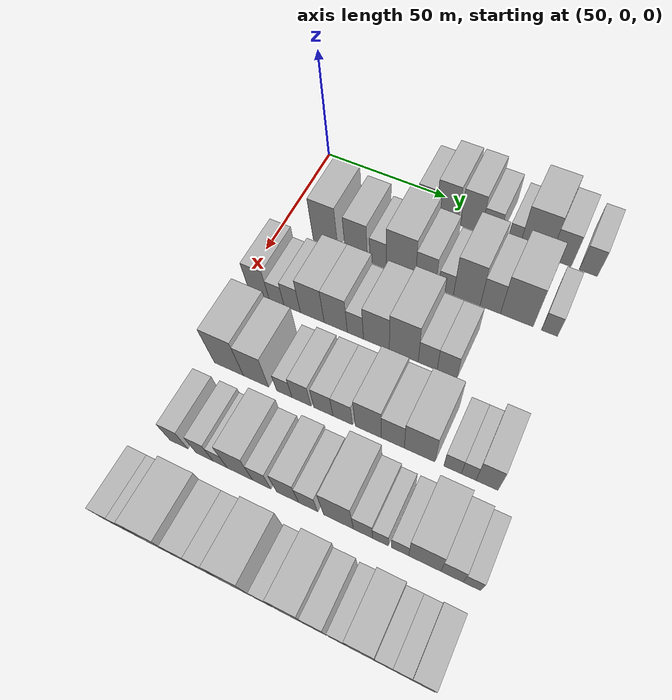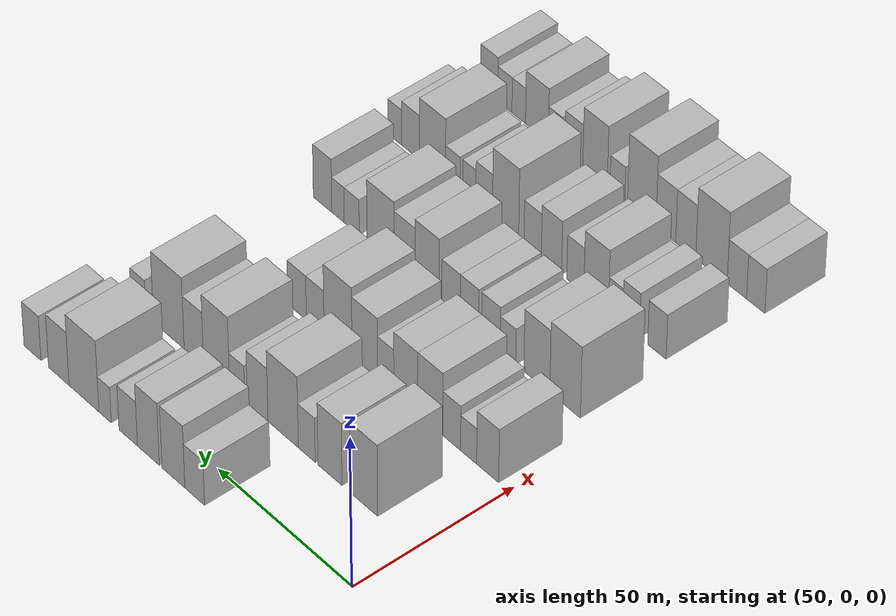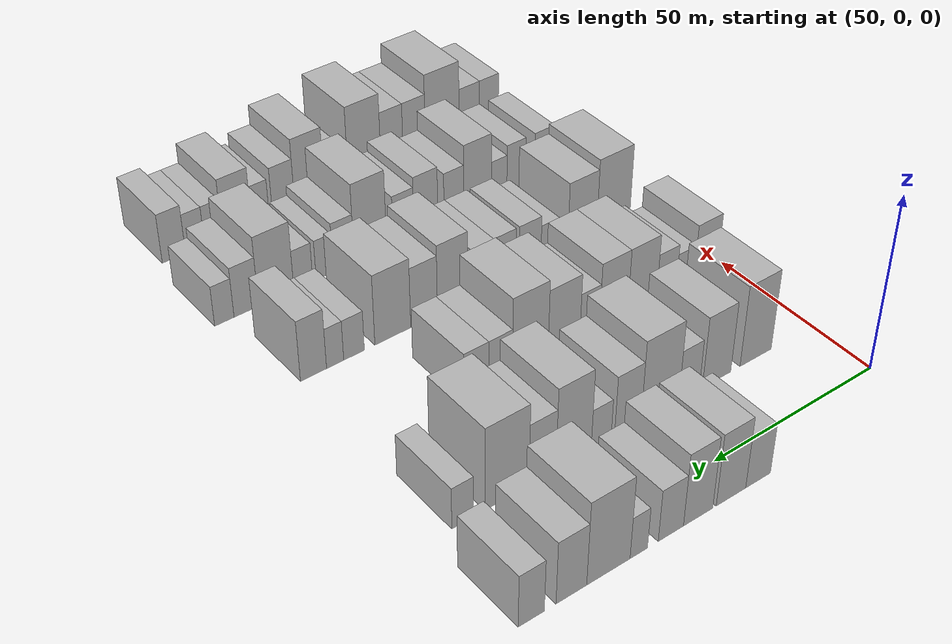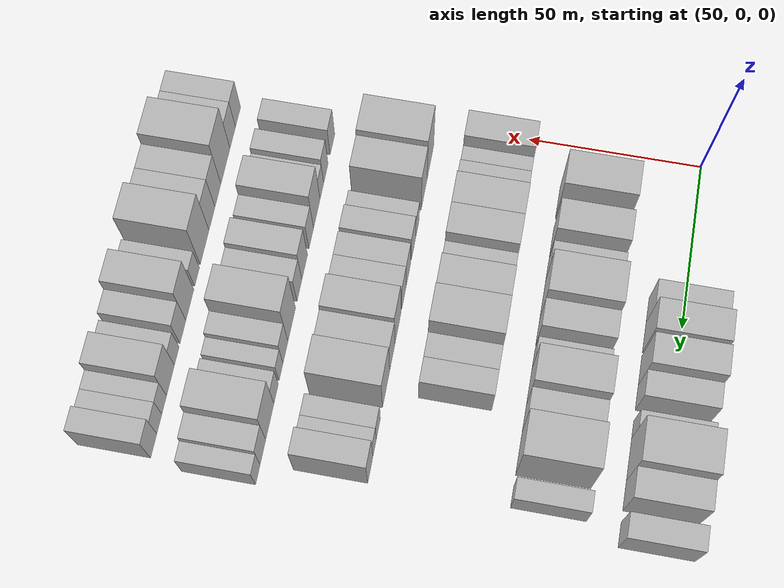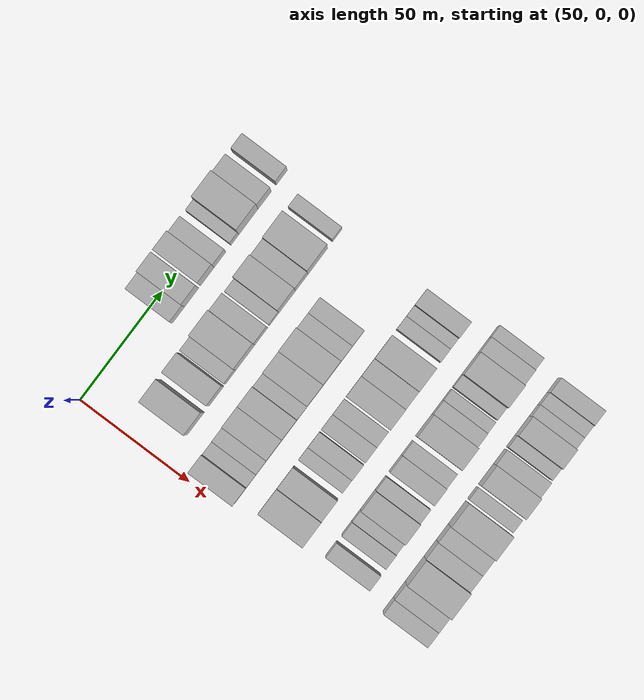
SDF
<sdf version="1.6">
 <world name="default">
  <model name="building_56">
   <static>1</static>
   <pose>50.0000 46.4894 0 0.000000 0.000000 0.000000</pose>
   <link name="link">
    <pose>0 0 7.50 0 0 0</pose>
    <collision name="collision"><geometry><box><size>20.0000 7.4628 15.0000</size></box></geometry></collision>
    <visual name="visual">
     <cast_shadows>0</cast_shadows>
     <geometry><box><size>20.0000 7.4628 15.0000</size></box></geometry>
     <material>
      <script>
       <uri>model://HANNAS_wall/materials/scripts</uri>
       <uri>model://HANNAS_wall/materials/textures</uri>
       <name>vrc/HANNAS_wall</name>
      </script>
     </material>
    </visual>
   </link>
  </model>
  <model name="building_57">
   <static>1</static>
   <pose>50.0000 54.5835 0 0.000000 0.000000 0.000000</pose>
   <link name="link">
    <pose>0 0 10.50 0 0 0</pose>
    <collision name="collision"><geometry><box><size>20.0000 8.7255 21.0000</size></box></geometry></collision>
    <visual name="visual">
     <cast_shadows>0</cast_shadows>
     <geometry><box><size>20.0000 8.7255 21.0000</size></box></geometry>
     <material>
      <script>
       <uri>model://HANNAS_wall/materials/scripts</uri>
       <uri>model://HANNAS_wall/materials/textures</uri>
       <name>vrc/HANNAS_wall</name>
      </script>
     </material>
    </visual>
   </link>
  </model>
  <model name="building_58">
   <static>1</static>
   <pose>50.0000 64.1727 0 0.000000 0.000000 0.000000</pose>
   <link name="link">
    <pose>0 0 10.50 0 0 0</pose>
    <collision name="collision"><geometry><box><size>20.0000 8.4528 21.0000</size></box></geometry></collision>
    <visual name="visual">
     <cast_shadows>0</cast_shadows>
     <geometry><box><size>20.0000 8.4528 21.0000</size></box></geometry>
     <material>
      <script>
       <uri>model://HANNAS_wall/materials/scripts</uri>
       <uri>model://HANNAS_wall/materials/textures</uri>
       <name>vrc/HANNAS_wall</name>
      </script>
     </material>
    </visual>
   </link>
  </model>
  <model name="building_59">
   <static>1</static>
   <pose>50.0000 71.9597 0 0.000000 0.000000 0.000000</pose>
   <link name="link">
    <pose>0 0 7.50 0 0 0</pose>
    <collision name="collision"><geometry><box><size>20.0000 7.1213 15.0000</size></box></geometry></collision>
    <visual name="visual">
     <cast_shadows>0</cast_shadows>
     <geometry><box><size>20.0000 7.1213 15.0000</size></box></geometry>
     <material>
      <script>
       <uri>model://HANNAS_wall/materials/scripts</uri>
       <uri>model://HANNAS_wall/materials/textures</uri>
       <name>vrc/HANNAS_wall</name>
      </script>
     </material>
    </visual>
   </link>
  </model>
  <model name="building_60">
   <static>1</static>
   <pose>50.0000 80.9286 0 0.000000 0.000000 0.000000</pose>
   <link name="link">
    <pose>0 0 6.00 0 0 0</pose>
    <collision name="collision"><geometry><box><size>20.0000 4.8165 12.0000</size></box></geometry></collision>
    <visual name="visual">
     <cast_shadows>0</cast_shadows>
     <geometry><box><size>20.0000 4.8165 12.0000</size></box></geometry>
     <material>
      <script>
       <uri>model://HANNAS_wall/materials/scripts</uri>
       <uri>model://HANNAS_wall/materials/textures</uri>
       <name>vrc/HANNAS_wall</name>
      </script>
     </material>
    </visual>
   </link>
  </model>
  <model name="building_61">
   <static>1</static>
   <pose>50.0000 89.1917 0 0.000000 0.000000 0.000000</pose>
   <link name="link">
    <pose>0 0 12.00 0 0 0</pose>
    <collision name="collision"><geometry><box><size>20.0000 11.7098 24.0000</size></box></geometry></collision>
    <visual name="visual">
     <cast_shadows>0</cast_shadows>
     <geometry><box><size>20.0000 11.7098 24.0000</size></box></geometry>
     <material>
      <script>
       <uri>model://HANNAS_wall/materials/scripts</uri>
       <uri>model://HANNAS_wall/materials/textures</uri>
       <name>vrc/HANNAS_wall</name>
      </script>
     </material>
    </visual>
   </link>
  </model>
  <model name="building_62">
   <static>1</static>
   <pose>50.0000 99.0865 0 0.000000 0.000000 0.000000</pose>
   <link name="link">
    <pose>0 0 9.00 0 0 0</pose>
    <collision name="collision"><geometry><box><size>20.0000 8.0797 18.0000</size></box></geometry></collision>
    <visual name="visual">
     <cast_shadows>0</cast_shadows>
     <geometry><box><size>20.0000 8.0797 18.0000</size></box></geometry>
     <material>
      <script>
       <uri>model://HANNAS_wall/materials/scripts</uri>
       <uri>model://HANNAS_wall/materials/textures</uri>
       <name>vrc/HANNAS_wall</name>
      </script>
     </material>
    </visual>
   </link>
  </model>
  <model name="building_63">
   <static>1</static>
   <pose>50.0000 109.4920 0 0.000000 0.000000 0.000000</pose>
   <link name="link">
    <pose>0 0 7.50 0 0 0</pose>
    <collision name="collision"><geometry><box><size>20.0000 6.7313 15.0000</size></box></geometry></collision>
    <visual name="visual">
     <cast_shadows>0</cast_shadows>
     <geometry><box><size>20.0000 6.7313 15.0000</size></box></geometry>
     <material>
      <script>
       <uri>model://HANNAS_wall/materials/scripts</uri>
       <uri>model://HANNAS_wall/materials/textures</uri>
       <name>vrc/HANNAS_wall</name>
      </script>
     </material>
    </visual>
   </link>
  </model>
  <model name="building_166">
   <static>1</static>
   <pose>79.0000 18.6473 0 0.000000 0.000000 0.000000</pose>
   <link name="link">
    <pose>0 0 12.00 0 0 0</pose>
    <collision name="collision"><geometry><box><size>20.0000 10.1705 24.0000</size></box></geometry></collision>
    <visual name="visual">
     <cast_shadows>0</cast_shadows>
     <geometry><box><size>20.0000 10.1705 24.0000</size></box></geometry>
     <material>
      <script>
       <uri>model://HANNAS_wall/materials/scripts</uri>
       <uri>model://HANNAS_wall/materials/textures</uri>
       <name>vrc/HANNAS_wall</name>
      </script>
     </material>
    </visual>
   </link>
  </model>
  <model name="building_167">
   <static>1</static>
   <pose>79.0000 31.2227 0 0.000000 0.000000 0.000000</pose>
   <link name="link">
    <pose>0 0 10.50 0 0 0</pose>
    <collision name="collision"><geometry><box><size>20.0000 8.9803 21.0000</size></box></geometry></collision>
    <visual name="visual">
     <cast_shadows>0</cast_shadows>
     <geometry><box><size>20.0000 8.9803 21.0000</size></box></geometry>
     <material>
      <script>
       <uri>model://HANNAS_wall/materials/scripts</uri>
       <uri>model://HANNAS_wall/materials/textures</uri>
       <name>vrc/HANNAS_wall</name>
      </script>
     </material>
    </visual>
   </link>
  </model>
  <model name="building_168">
   <static>1</static>
   <pose>79.0000 39.8991 0 0.000000 0.000000 0.000000</pose>
   <link name="link">
    <pose>0 0 7.50 0 0 0</pose>
    <collision name="collision"><geometry><box><size>20.0000 6.3725 15.0000</size></box></geometry></collision>
    <visual name="visual">
     <cast_shadows>0</cast_shadows>
     <geometry><box><size>20.0000 6.3725 15.0000</size></box></geometry>
     <material>
      <script>
       <uri>model://HANNAS_wall/materials/scripts</uri>
       <uri>model://HANNAS_wall/materials/textures</uri>
       <name>vrc/HANNAS_wall</name>
      </script>
     </material>
    </visual>
   </link>
  </model>
  <model name="building_169">
   <static>1</static>
   <pose>79.0000 48.8369 0 0.000000 0.000000 0.000000</pose>
   <link name="link">
    <pose>0 0 12.00 0 0 0</pose>
    <collision name="collision"><geometry><box><size>20.0000 11.5030 24.0000</size></box></geometry></collision>
    <visual name="visual">
     <cast_shadows>0</cast_shadows>
     <geometry><box><size>20.0000 11.5030 24.0000</size></box></geometry>
     <material>
      <script>
       <uri>model://HANNAS_wall/materials/scripts</uri>
       <uri>model://HANNAS_wall/materials/textures</uri>
       <name>vrc/HANNAS_wall</name>
      </script>
     </material>
    </visual>
   </link>
  </model>
  <model name="building_170">
   <static>1</static>
   <pose>79.0000 58.5169 0 0.000000 0.000000 0.000000</pose>
   <link name="link">
    <pose>0 0 9.00 0 0 0</pose>
    <collision name="collision"><geometry><box><size>20.0000 7.8570 18.0000</size></box></geometry></collision>
    <visual name="visual">
     <cast_shadows>0</cast_shadows>
     <geometry><box><size>20.0000 7.8570 18.0000</size></box></geometry>
     <material>
      <script>
       <uri>model://HANNAS_wall/materials/scripts</uri>
       <uri>model://HANNAS_wall/materials/textures</uri>
       <name>vrc/HANNAS_wall</name>
      </script>
     </material>
    </visual>
   </link>
  </model>
  <model name="building_171">
   <static>1</static>
   <pose>79.0000 66.3534 0 0.000000 0.000000 0.000000</pose>
   <link name="link">
    <pose>0 0 6.00 0 0 0</pose>
    <collision name="collision"><geometry><box><size>20.0000 5.8160 12.0000</size></box></geometry></collision>
    <visual name="visual">
     <cast_shadows>0</cast_shadows>
     <geometry><box><size>20.0000 5.8160 12.0000</size></box></geometry>
     <material>
      <script>
       <uri>model://HANNAS_wall/materials/scripts</uri>
       <uri>model://HANNAS_wall/materials/textures</uri>
       <name>vrc/HANNAS_wall</name>
      </script>
     </material>
    </visual>
   </link>
  </model>
  <model name="building_172">
   <static>1</static>
   <pose>79.0000 74.2945 0 0.000000 0.000000 0.000000</pose>
   <link name="link">
    <pose>0 0 12.00 0 0 0</pose>
    <collision name="collision"><geometry><box><size>20.0000 10.0663 24.0000</size></box></geometry></collision>
    <visual name="visual">
     <cast_shadows>0</cast_shadows>
     <geometry><box><size>20.0000 10.0663 24.0000</size></box></geometry>
     <material>
      <script>
       <uri>model://HANNAS_wall/materials/scripts</uri>
       <uri>model://HANNAS_wall/materials/textures</uri>
       <name>vrc/HANNAS_wall</name>
      </script>
     </material>
    </visual>
   </link>
  </model>
  <model name="building_173">
   <static>1</static>
   <pose>79.0000 83.1020 0 0.000000 0.000000 0.000000</pose>
   <link name="link">
    <pose>0 0 9.00 0 0 0</pose>
    <collision name="collision"><geometry><box><size>20.0000 7.5486 18.0000</size></box></geometry></collision>
    <visual name="visual">
     <cast_shadows>0</cast_shadows>
     <geometry><box><size>20.0000 7.5486 18.0000</size></box></geometry>
     <material>
      <script>
       <uri>model://HANNAS_wall/materials/scripts</uri>
       <uri>model://HANNAS_wall/materials/textures</uri>
       <name>vrc/HANNAS_wall</name>
      </script>
     </material>
    </visual>
   </link>
  </model>
  <model name="building_174">
   <static>1</static>
   <pose>79.0000 92.8657 0 0.000000 0.000000 0.000000</pose>
   <link name="link">
    <pose>0 0 12.00 0 0 0</pose>
    <collision name="collision"><geometry><box><size>20.0000 11.9789 24.0000</size></box></geometry></collision>
    <visual name="visual">
     <cast_shadows>0</cast_shadows>
     <geometry><box><size>20.0000 11.9789 24.0000</size></box></geometry>
     <material>
      <script>
       <uri>model://HANNAS_wall/materials/scripts</uri>
       <uri>model://HANNAS_wall/materials/textures</uri>
       <name>vrc/HANNAS_wall</name>
      </script>
     </material>
    </visual>
   </link>
  </model>
  <model name="building_175">
   <static>1</static>
   <pose>79.0000 104.7405 0 0.000000 0.000000 0.000000</pose>
   <link name="link">
    <pose>0 0 6.00 0 0 0</pose>
    <collision name="collision"><geometry><box><size>20.0000 5.7706 12.0000</size></box></geometry></collision>
    <visual name="visual">
     <cast_shadows>0</cast_shadows>
     <geometry><box><size>20.0000 5.7706 12.0000</size></box></geometry>
     <material>
      <script>
       <uri>model://HANNAS_wall/materials/scripts</uri>
       <uri>model://HANNAS_wall/materials/textures</uri>
       <name>vrc/HANNAS_wall</name>
      </script>
     </material>
    </visual>
   </link>
  </model>
  <model name="building_277">
   <static>1</static>
   <pose>108.0000 7.4457 0 0.000000 0.000000 0.000000</pose>
   <link name="link">
    <pose>0 0 9.00 0 0 0</pose>
    <collision name="collision"><geometry><box><size>20.0000 8.0798 18.0000</size></box></geometry></collision>
    <visual name="visual">
     <cast_shadows>0</cast_shadows>
     <geometry><box><size>20.0000 8.0798 18.0000</size></box></geometry>
     <material>
      <script>
       <uri>model://HANNAS_wall/materials/scripts</uri>
       <uri>model://HANNAS_wall/materials/textures</uri>
       <name>vrc/HANNAS_wall</name>
      </script>
     </material>
    </visual>
   </link>
  </model>
  <model name="building_278">
   <static>1</static>
   <pose>108.0000 14.4454 0 0.000000 0.000000 0.000000</pose>
   <link name="link">
    <pose>0 0 6.00 0 0 0</pose>
    <collision name="collision"><geometry><box><size>20.0000 5.9196 12.0000</size></box></geometry></collision>
    <visual name="visual">
     <cast_shadows>0</cast_shadows>
     <geometry><box><size>20.0000 5.9196 12.0000</size></box></geometry>
     <material>
      <script>
       <uri>model://HANNAS_wall/materials/scripts</uri>
       <uri>model://HANNAS_wall/materials/textures</uri>
       <name>vrc/HANNAS_wall</name>
      </script>
     </material>
    </visual>
   </link>
  </model>
  <model name="building_279">
   <static>1</static>
   <pose>108.0000 20.6477 0 0.000000 0.000000 0.000000</pose>
   <link name="link">
    <pose>0 0 7.50 0 0 0</pose>
    <collision name="collision"><geometry><box><size>20.0000 6.4851 15.0000</size></box></geometry></collision>
    <visual name="visual">
     <cast_shadows>0</cast_shadows>
     <geometry><box><size>20.0000 6.4851 15.0000</size></box></geometry>
     <material>
      <script>
       <uri>model://HANNAS_wall/materials/scripts</uri>
       <uri>model://HANNAS_wall/materials/textures</uri>
       <name>vrc/HANNAS_wall</name>
      </script>
     </material>
    </visual>
   </link>
  </model>
  <model name="building_280">
   <static>1</static>
   <pose>108.0000 28.5386 0 0.000000 0.000000 0.000000</pose>
   <link name="link">
    <pose>0 0 10.50 0 0 0</pose>
    <collision name="collision"><geometry><box><size>20.0000 9.2967 21.0000</size></box></geometry></collision>
    <visual name="visual">
     <cast_shadows>0</cast_shadows>
     <geometry><box><size>20.0000 9.2967 21.0000</size></box></geometry>
     <material>
      <script>
       <uri>model://HANNAS_wall/materials/scripts</uri>
       <uri>model://HANNAS_wall/materials/textures</uri>
       <name>vrc/HANNAS_wall</name>
      </script>
     </material>
    </visual>
   </link>
  </model>
  <model name="building_281">
   <static>1</static>
   <pose>108.0000 37.6567 0 0.000000 0.000000 0.000000</pose>
   <link name="link">
    <pose>0 0 10.50 0 0 0</pose>
    <collision name="collision"><geometry><box><size>20.0000 8.9397 21.0000</size></box></geometry></collision>
    <visual name="visual">
     <cast_shadows>0</cast_shadows>
     <geometry><box><size>20.0000 8.9397 21.0000</size></box></geometry>
     <material>
      <script>
       <uri>model://HANNAS_wall/materials/scripts</uri>
       <uri>model://HANNAS_wall/materials/textures</uri>
       <name>vrc/HANNAS_wall</name>
      </script>
     </material>
    </visual>
   </link>
  </model>
  <model name="building_282">
   <static>1</static>
   <pose>108.0000 45.1717 0 0.000000 0.000000 0.000000</pose>
   <link name="link">
    <pose>0 0 7.50 0 0 0</pose>
    <collision name="collision"><geometry><box><size>20.0000 6.0903 15.0000</size></box></geometry></collision>
    <visual name="visual">
     <cast_shadows>0</cast_shadows>
     <geometry><box><size>20.0000 6.0903 15.0000</size></box></geometry>
     <material>
      <script>
       <uri>model://HANNAS_wall/materials/scripts</uri>
       <uri>model://HANNAS_wall/materials/textures</uri>
       <name>vrc/HANNAS_wall</name>
      </script>
     </material>
    </visual>
   </link>
  </model>
  <model name="building_283">
   <static>1</static>
   <pose>108.0000 53.0634 0 0.000000 0.000000 0.000000</pose>
   <link name="link">
    <pose>0 0 10.50 0 0 0</pose>
    <collision name="collision"><geometry><box><size>20.0000 9.6931 21.0000</size></box></geometry></collision>
    <visual name="visual">
     <cast_shadows>0</cast_shadows>
     <geometry><box><size>20.0000 9.6931 21.0000</size></box></geometry>
     <material>
      <script>
       <uri>model://HANNAS_wall/materials/scripts</uri>
       <uri>model://HANNAS_wall/materials/textures</uri>
       <name>vrc/HANNAS_wall</name>
      </script>
     </material>
    </visual>
   </link>
  </model>
  <model name="building_284">
   <static>1</static>
   <pose>108.0000 63.2299 0 0.000000 0.000000 0.000000</pose>
   <link name="link">
    <pose>0 0 12.00 0 0 0</pose>
    <collision name="collision"><geometry><box><size>20.0000 10.6400 24.0000</size></box></geometry></collision>
    <visual name="visual">
     <cast_shadows>0</cast_shadows>
     <geometry><box><size>20.0000 10.6400 24.0000</size></box></geometry>
     <material>
      <script>
       <uri>model://HANNAS_wall/materials/scripts</uri>
       <uri>model://HANNAS_wall/materials/textures</uri>
       <name>vrc/HANNAS_wall</name>
      </script>
     </material>
    </visual>
   </link>
  </model>
  <model name="building_285">
   <static>1</static>
   <pose>108.0000 71.9826 0 0.000000 0.000000 0.000000</pose>
   <link name="link">
    <pose>0 0 7.50 0 0 0</pose>
    <collision name="collision"><geometry><box><size>20.0000 6.8653 15.0000</size></box></geometry></collision>
    <visual name="visual">
     <cast_shadows>0</cast_shadows>
     <geometry><box><size>20.0000 6.8653 15.0000</size></box></geometry>
     <material>
      <script>
       <uri>model://HANNAS_wall/materials/scripts</uri>
       <uri>model://HANNAS_wall/materials/textures</uri>
       <name>vrc/HANNAS_wall</name>
      </script>
     </material>
    </visual>
   </link>
  </model>
  <model name="building_286">
   <static>1</static>
   <pose>108.0000 78.9613 0 0.000000 0.000000 0.000000</pose>
   <link name="link">
    <pose>0 0 7.50 0 0 0</pose>
    <collision name="collision"><geometry><box><size>20.0000 7.0920 15.0000</size></box></geometry></collision>
    <visual name="visual">
     <cast_shadows>0</cast_shadows>
     <geometry><box><size>20.0000 7.0920 15.0000</size></box></geometry>
     <material>
      <script>
       <uri>model://HANNAS_wall/materials/scripts</uri>
       <uri>model://HANNAS_wall/materials/textures</uri>
       <name>vrc/HANNAS_wall</name>
      </script>
     </material>
    </visual>
   </link>
  </model>
  <model name="building_385">
   <static>1</static>
   <pose>137.0000 12.6247 0 0.000000 0.000000 0.000000</pose>
   <link name="link">
    <pose>0 0 12.00 0 0 0</pose>
    <collision name="collision"><geometry><box><size>20.0000 11.2059 24.0000</size></box></geometry></collision>
    <visual name="visual">
     <cast_shadows>0</cast_shadows>
     <geometry><box><size>20.0000 11.2059 24.0000</size></box></geometry>
     <material>
      <script>
       <uri>model://HANNAS_wall/materials/scripts</uri>
       <uri>model://HANNAS_wall/materials/textures</uri>
       <name>vrc/HANNAS_wall</name>
      </script>
     </material>
    </visual>
   </link>
  </model>
  <model name="building_386">
   <static>1</static>
   <pose>137.0000 23.0162 0 0.000000 0.000000 0.000000</pose>
   <link name="link">
    <pose>0 0 10.50 0 0 0</pose>
    <collision name="collision"><geometry><box><size>20.0000 9.5771 21.0000</size></box></geometry></collision>
    <visual name="visual">
     <cast_shadows>0</cast_shadows>
     <geometry><box><size>20.0000 9.5771 21.0000</size></box></geometry>
     <material>
      <script>
       <uri>model://HANNAS_wall/materials/scripts</uri>
       <uri>model://HANNAS_wall/materials/textures</uri>
       <name>vrc/HANNAS_wall</name>
      </script>
     </material>
    </visual>
   </link>
  </model>
  <model name="building_387">
   <static>1</static>
   <pose>137.0000 33.6724 0 0.000000 0.000000 0.000000</pose>
   <link name="link">
    <pose>0 0 6.00 0 0 0</pose>
    <collision name="collision"><geometry><box><size>20.0000 5.7353 12.0000</size></box></geometry></collision>
    <visual name="visual">
     <cast_shadows>0</cast_shadows>
     <geometry><box><size>20.0000 5.7353 12.0000</size></box></geometry>
     <material>
      <script>
       <uri>model://HANNAS_wall/materials/scripts</uri>
       <uri>model://HANNAS_wall/materials/textures</uri>
       <name>vrc/HANNAS_wall</name>
      </script>
     </material>
    </visual>
   </link>
  </model>
  <model name="building_388">
   <static>1</static>
   <pose>137.0000 40.0405 0 0.000000 0.000000 0.000000</pose>
   <link name="link">
    <pose>0 0 7.50 0 0 0</pose>
    <collision name="collision"><geometry><box><size>20.0000 7.0009 15.0000</size></box></geometry></collision>
    <visual name="visual">
     <cast_shadows>0</cast_shadows>
     <geometry><box><size>20.0000 7.0009 15.0000</size></box></geometry>
     <material>
      <script>
       <uri>model://HANNAS_wall/materials/scripts</uri>
       <uri>model://HANNAS_wall/materials/textures</uri>
       <name>vrc/HANNAS_wall</name>
      </script>
     </material>
    </visual>
   </link>
  </model>
  <model name="building_389">
   <static>1</static>
   <pose>137.0000 48.0003 0 0.000000 0.000000 0.000000</pose>
   <link name="link">
    <pose>0 0 7.50 0 0 0</pose>
    <collision name="collision"><geometry><box><size>20.0000 6.9186 15.0000</size></box></geometry></collision>
    <visual name="visual">
     <cast_shadows>0</cast_shadows>
     <geometry><box><size>20.0000 6.9186 15.0000</size></box></geometry>
     <material>
      <script>
       <uri>model://HANNAS_wall/materials/scripts</uri>
       <uri>model://HANNAS_wall/materials/textures</uri>
       <name>vrc/HANNAS_wall</name>
      </script>
     </material>
    </visual>
   </link>
  </model>
  <model name="building_390">
   <static>1</static>
   <pose>137.0000 54.9605 0 0.000000 0.000000 0.000000</pose>
   <link name="link">
    <pose>0 0 7.50 0 0 0</pose>
    <collision name="collision"><geometry><box><size>20.0000 7.0018 15.0000</size></box></geometry></collision>
    <visual name="visual">
     <cast_shadows>0</cast_shadows>
     <geometry><box><size>20.0000 7.0018 15.0000</size></box></geometry>
     <material>
      <script>
       <uri>model://HANNAS_wall/materials/scripts</uri>
       <uri>model://HANNAS_wall/materials/textures</uri>
       <name>vrc/HANNAS_wall</name>
      </script>
     </material>
    </visual>
   </link>
  </model>
  <model name="building_391">
   <static>1</static>
   <pose>137.0000 64.0463 0 0.000000 0.000000 0.000000</pose>
   <link name="link">
    <pose>0 0 10.50 0 0 0</pose>
    <collision name="collision"><geometry><box><size>20.0000 9.1698 21.0000</size></box></geometry></collision>
    <visual name="visual">
     <cast_shadows>0</cast_shadows>
     <geometry><box><size>20.0000 9.1698 21.0000</size></box></geometry>
     <material>
      <script>
       <uri>model://HANNAS_wall/materials/scripts</uri>
       <uri>model://HANNAS_wall/materials/textures</uri>
       <name>vrc/HANNAS_wall</name>
      </script>
     </material>
    </visual>
   </link>
  </model>
  <model name="building_392">
   <static>1</static>
   <pose>137.0000 72.6082 0 0.000000 0.000000 0.000000</pose>
   <link name="link">
    <pose>0 0 9.00 0 0 0</pose>
    <collision name="collision"><geometry><box><size>20.0000 7.9541 18.0000</size></box></geometry></collision>
    <visual name="visual">
     <cast_shadows>0</cast_shadows>
     <geometry><box><size>20.0000 7.9541 18.0000</size></box></geometry>
     <material>
      <script>
       <uri>model://HANNAS_wall/materials/scripts</uri>
       <uri>model://HANNAS_wall/materials/textures</uri>
       <name>vrc/HANNAS_wall</name>
      </script>
     </material>
    </visual>
   </link>
  </model>
  <model name="building_393">
   <static>1</static>
   <pose>137.0000 81.8132 0 0.000000 0.000000 0.000000</pose>
   <link name="link">
    <pose>0 0 10.50 0 0 0</pose>
    <collision name="collision"><geometry><box><size>20.0000 10.4559 21.0000</size></box></geometry></collision>
    <visual name="visual">
     <cast_shadows>0</cast_shadows>
     <geometry><box><size>20.0000 10.4559 21.0000</size></box></geometry>
     <material>
      <script>
       <uri>model://HANNAS_wall/materials/scripts</uri>
       <uri>model://HANNAS_wall/materials/textures</uri>
       <name>vrc/HANNAS_wall</name>
      </script>
     </material>
    </visual>
   </link>
  </model>
  <model name="building_394">
   <static>1</static>
   <pose>137.0000 92.9757 0 0.000000 0.000000 0.000000</pose>
   <link name="link">
    <pose>0 0 6.00 0 0 0</pose>
    <collision name="collision"><geometry><box><size>20.0000 5.8691 12.0000</size></box></geometry></collision>
    <visual name="visual">
     <cast_shadows>0</cast_shadows>
     <geometry><box><size>20.0000 5.8691 12.0000</size></box></geometry>
     <material>
      <script>
       <uri>model://HANNAS_wall/materials/scripts</uri>
       <uri>model://HANNAS_wall/materials/textures</uri>
       <name>vrc/HANNAS_wall</name>
      </script>
     </material>
    </visual>
   </link>
  </model>
  <model name="building_395">
   <static>1</static>
   <pose>137.0000 98.3159 0 0.000000 0.000000 0.000000</pose>
   <link name="link">
    <pose>0 0 6.00 0 0 0</pose>
    <collision name="collision"><geometry><box><size>20.0000 4.8114 12.0000</size></box></geometry></collision>
    <visual name="visual">
     <cast_shadows>0</cast_shadows>
     <geometry><box><size>20.0000 4.8114 12.0000</size></box></geometry>
     <material>
      <script>
       <uri>model://HANNAS_wall/materials/scripts</uri>
       <uri>model://HANNAS_wall/materials/textures</uri>
       <name>vrc/HANNAS_wall</name>
      </script>
     </material>
    </visual>
   </link>
  </model>
  <model name="building_396">
   <static>1</static>
   <pose>137.0000 104.3256 0 0.000000 0.000000 0.000000</pose>
   <link name="link">
    <pose>0 0 9.00 0 0 0</pose>
    <collision name="collision"><geometry><box><size>20.0000 7.2079 18.0000</size></box></geometry></collision>
    <visual name="visual">
     <cast_shadows>0</cast_shadows>
     <geometry><box><size>20.0000 7.2079 18.0000</size></box></geometry>
     <material>
      <script>
       <uri>model://HANNAS_wall/materials/scripts</uri>
       <uri>model://HANNAS_wall/materials/textures</uri>
       <name>vrc/HANNAS_wall</name>
      </script>
     </material>
    </visual>
   </link>
  </model>
  <model name="building_506">
   <static>1</static>
   <pose>166.0000 11.9550 0 0.000000 0.000000 0.000000</pose>
   <link name="link">
    <pose>0 0 7.50 0 0 0</pose>
    <collision name="collision"><geometry><box><size>20.0000 6.6866 15.0000</size></box></geometry></collision>
    <visual name="visual">
     <cast_shadows>0</cast_shadows>
     <geometry><box><size>20.0000 6.6866 15.0000</size></box></geometry>
     <material>
      <script>
       <uri>model://HANNAS_wall/materials/scripts</uri>
       <uri>model://HANNAS_wall/materials/textures</uri>
       <name>vrc/HANNAS_wall</name>
      </script>
     </material>
    </visual>
   </link>
  </model>
  <model name="building_507">
   <static>1</static>
   <pose>166.0000 21.4275 0 0.000000 0.000000 0.000000</pose>
   <link name="link">
    <pose>0 0 7.50 0 0 0</pose>
    <collision name="collision"><geometry><box><size>20.0000 6.2584 15.0000</size></box></geometry></collision>
    <visual name="visual">
     <cast_shadows>0</cast_shadows>
     <geometry><box><size>20.0000 6.2584 15.0000</size></box></geometry>
     <material>
      <script>
       <uri>model://HANNAS_wall/materials/scripts</uri>
       <uri>model://HANNAS_wall/materials/textures</uri>
       <name>vrc/HANNAS_wall</name>
      </script>
     </material>
    </visual>
   </link>
  </model>
  <model name="building_508">
   <static>1</static>
   <pose>166.0000 27.1379 0 0.000000 0.000000 0.000000</pose>
   <link name="link">
    <pose>0 0 6.00 0 0 0</pose>
    <collision name="collision"><geometry><box><size>20.0000 5.1623 12.0000</size></box></geometry></collision>
    <visual name="visual">
     <cast_shadows>0</cast_shadows>
     <geometry><box><size>20.0000 5.1623 12.0000</size></box></geometry>
     <material>
      <script>
       <uri>model://HANNAS_wall/materials/scripts</uri>
       <uri>model://HANNAS_wall/materials/textures</uri>
       <name>vrc/HANNAS_wall</name>
      </script>
     </material>
    </visual>
   </link>
  </model>
  <model name="building_509">
   <static>1</static>
   <pose>166.0000 34.2677 0 0.000000 0.000000 0.000000</pose>
   <link name="link">
    <pose>0 0 10.50 0 0 0</pose>
    <collision name="collision"><geometry><box><size>20.0000 9.0974 21.0000</size></box></geometry></collision>
    <visual name="visual">
     <cast_shadows>0</cast_shadows>
     <geometry><box><size>20.0000 9.0974 21.0000</size></box></geometry>
     <material>
      <script>
       <uri>model://HANNAS_wall/materials/scripts</uri>
       <uri>model://HANNAS_wall/materials/textures</uri>
       <name>vrc/HANNAS_wall</name>
      </script>
     </material>
    </visual>
   </link>
  </model>
  <model name="building_510">
   <static>1</static>
   <pose>166.0000 41.9765 0 0.000000 0.000000 0.000000</pose>
   <link name="link">
    <pose>0 0 7.50 0 0 0</pose>
    <collision name="collision"><geometry><box><size>20.0000 6.3201 15.0000</size></box></geometry></collision>
    <visual name="visual">
     <cast_shadows>0</cast_shadows>
     <geometry><box><size>20.0000 6.3201 15.0000</size></box></geometry>
     <material>
      <script>
       <uri>model://HANNAS_wall/materials/scripts</uri>
       <uri>model://HANNAS_wall/materials/textures</uri>
       <name>vrc/HANNAS_wall</name>
      </script>
     </material>
    </visual>
   </link>
  </model>
  <model name="building_511">
   <static>1</static>
   <pose>166.0000 50.9260 0 0.000000 0.000000 0.000000</pose>
   <link name="link">
    <pose>0 0 9.00 0 0 0</pose>
    <collision name="collision"><geometry><box><size>20.0000 7.5790 18.0000</size></box></geometry></collision>
    <visual name="visual">
     <cast_shadows>0</cast_shadows>
     <geometry><box><size>20.0000 7.5790 18.0000</size></box></geometry>
     <material>
      <script>
       <uri>model://HANNAS_wall/materials/scripts</uri>
       <uri>model://HANNAS_wall/materials/textures</uri>
       <name>vrc/HANNAS_wall</name>
      </script>
     </material>
    </visual>
   </link>
  </model>
  <model name="building_512">
   <static>1</static>
   <pose>166.0000 57.9854 0 0.000000 0.000000 0.000000</pose>
   <link name="link">
    <pose>0 0 7.50 0 0 0</pose>
    <collision name="collision"><geometry><box><size>20.0000 6.5397 15.0000</size></box></geometry></collision>
    <visual name="visual">
     <cast_shadows>0</cast_shadows>
     <geometry><box><size>20.0000 6.5397 15.0000</size></box></geometry>
     <material>
      <script>
       <uri>model://HANNAS_wall/materials/scripts</uri>
       <uri>model://HANNAS_wall/materials/textures</uri>
       <name>vrc/HANNAS_wall</name>
      </script>
     </material>
    </visual>
   </link>
  </model>
  <model name="building_513">
   <static>1</static>
   <pose>166.0000 68.2280 0 0.000000 0.000000 0.000000</pose>
   <link name="link">
    <pose>0 0 12.00 0 0 0</pose>
    <collision name="collision"><geometry><box><size>20.0000 9.9455 24.0000</size></box></geometry></collision>
    <visual name="visual">
     <cast_shadows>0</cast_shadows>
     <geometry><box><size>20.0000 9.9455 24.0000</size></box></geometry>
     <material>
      <script>
       <uri>model://HANNAS_wall/materials/scripts</uri>
       <uri>model://HANNAS_wall/materials/textures</uri>
       <name>vrc/HANNAS_wall</name>
      </script>
     </material>
    </visual>
   </link>
  </model>
  <model name="building_514">
   <static>1</static>
   <pose>166.0000 76.3756 0 0.000000 0.000000 0.000000</pose>
   <link name="link">
    <pose>0 0 7.50 0 0 0</pose>
    <collision name="collision"><geometry><box><size>20.0000 6.3496 15.0000</size></box></geometry></collision>
    <visual name="visual">
     <cast_shadows>0</cast_shadows>
     <geometry><box><size>20.0000 6.3496 15.0000</size></box></geometry>
     <material>
      <script>
       <uri>model://HANNAS_wall/materials/scripts</uri>
       <uri>model://HANNAS_wall/materials/textures</uri>
       <name>vrc/HANNAS_wall</name>
      </script>
     </material>
    </visual>
   </link>
  </model>
  <model name="building_515">
   <static>1</static>
   <pose>166.0000 82.0703 0 0.000000 0.000000 0.000000</pose>
   <link name="link">
    <pose>0 0 6.00 0 0 0</pose>
    <collision name="collision"><geometry><box><size>20.0000 5.0400 12.0000</size></box></geometry></collision>
    <visual name="visual">
     <cast_shadows>0</cast_shadows>
     <geometry><box><size>20.0000 5.0400 12.0000</size></box></geometry>
     <material>
      <script>
       <uri>model://HANNAS_wall/materials/scripts</uri>
       <uri>model://HANNAS_wall/materials/textures</uri>
       <name>vrc/HANNAS_wall</name>
      </script>
     </material>
    </visual>
   </link>
  </model>
  <model name="building_516">
   <static>1</static>
   <pose>166.0000 88.3707 0 0.000000 0.000000 0.000000</pose>
   <link name="link">
    <pose>0 0 6.00 0 0 0</pose>
    <collision name="collision"><geometry><box><size>20.0000 5.5606 12.0000</size></box></geometry></collision>
    <visual name="visual">
     <cast_shadows>0</cast_shadows>
     <geometry><box><size>20.0000 5.5606 12.0000</size></box></geometry>
     <material>
      <script>
       <uri>model://HANNAS_wall/materials/scripts</uri>
       <uri>model://HANNAS_wall/materials/textures</uri>
       <name>vrc/HANNAS_wall</name>
      </script>
     </material>
    </visual>
   </link>
  </model>
  <model name="building_517">
   <static>1</static>
   <pose>166.0000 96.2117 0 0.000000 0.000000 0.000000</pose>
   <link name="link">
    <pose>0 0 10.50 0 0 0</pose>
    <collision name="collision"><geometry><box><size>20.0000 10.1213 21.0000</size></box></geometry></collision>
    <visual name="visual">
     <cast_shadows>0</cast_shadows>
     <geometry><box><size>20.0000 10.1213 21.0000</size></box></geometry>
     <material>
      <script>
       <uri>model://HANNAS_wall/materials/scripts</uri>
       <uri>model://HANNAS_wall/materials/textures</uri>
       <name>vrc/HANNAS_wall</name>
      </script>
     </material>
    </visual>
   </link>
  </model>
  <model name="building_518">
   <static>1</static>
   <pose>166.0000 104.7468 0 0.000000 0.000000 0.000000</pose>
   <link name="link">
    <pose>0 0 7.50 0 0 0</pose>
    <collision name="collision"><geometry><box><size>20.0000 6.9489 15.0000</size></box></geometry></collision>
    <visual name="visual">
     <cast_shadows>0</cast_shadows>
     <geometry><box><size>20.0000 6.9489 15.0000</size></box></geometry>
     <material>
      <script>
       <uri>model://HANNAS_wall/materials/scripts</uri>
       <uri>model://HANNAS_wall/materials/textures</uri>
       <name>vrc/HANNAS_wall</name>
      </script>
     </material>
    </visual>
   </link>
  </model>
  <model name="building_519">
   <static>1</static>
   <pose>166.0000 110.9246 0 0.000000 0.000000 0.000000</pose>
   <link name="link">
    <pose>0 0 6.00 0 0 0</pose>
    <collision name="collision"><geometry><box><size>20.0000 5.4069 12.0000</size></box></geometry></collision>
    <visual name="visual">
     <cast_shadows>0</cast_shadows>
     <geometry><box><size>20.0000 5.4069 12.0000</size></box></geometry>
     <material>
      <script>
       <uri>model://HANNAS_wall/materials/scripts</uri>
       <uri>model://HANNAS_wall/materials/textures</uri>
       <name>vrc/HANNAS_wall</name>
      </script>
     </material>
    </visual>
   </link>
  </model>
  <model name="building_617">
   <static>1</static>
   <pose>195.0000 8.1214 0 0.000000 0.000000 0.000000</pose>
   <link name="link">
    <pose>0 0 7.50 0 0 0</pose>
    <collision name="collision"><geometry><box><size>20.0000 6.6524 15.0000</size></box></geometry></collision>
    <visual name="visual">
     <cast_shadows>0</cast_shadows>
     <geometry><box><size>20.0000 6.6524 15.0000</size></box></geometry>
     <material>
      <script>
       <uri>model://HANNAS_wall/materials/scripts</uri>
       <uri>model://HANNAS_wall/materials/textures</uri>
       <name>vrc/HANNAS_wall</name>
      </script>
     </material>
    </visual>
   </link>
  </model>
  <model name="building_618">
   <static>1</static>
   <pose>195.0000 14.9757 0 0.000000 0.000000 0.000000</pose>
   <link name="link">
    <pose>0 0 7.50 0 0 0</pose>
    <collision name="collision"><geometry><box><size>20.0000 7.0563 15.0000</size></box></geometry></collision>
    <visual name="visual">
     <cast_shadows>0</cast_shadows>
     <geometry><box><size>20.0000 7.0563 15.0000</size></box></geometry>
     <material>
      <script>
       <uri>model://HANNAS_wall/materials/scripts</uri>
       <uri>model://HANNAS_wall/materials/textures</uri>
       <name>vrc/HANNAS_wall</name>
      </script>
     </material>
    </visual>
   </link>
  </model>
  <model name="building_619">
   <static>1</static>
   <pose>195.0000 24.2581 0 0.000000 0.000000 0.000000</pose>
   <link name="link">
    <pose>0 0 12.00 0 0 0</pose>
    <collision name="collision"><geometry><box><size>20.0000 11.5085 24.0000</size></box></geometry></collision>
    <visual name="visual">
     <cast_shadows>0</cast_shadows>
     <geometry><box><size>20.0000 11.5085 24.0000</size></box></geometry>
     <material>
      <script>
       <uri>model://HANNAS_wall/materials/scripts</uri>
       <uri>model://HANNAS_wall/materials/textures</uri>
       <name>vrc/HANNAS_wall</name>
      </script>
     </material>
    </visual>
   </link>
  </model>
  <model name="building_620">
   <static>1</static>
   <pose>195.0000 33.7254 0 0.000000 0.000000 0.000000</pose>
   <link name="link">
    <pose>0 0 9.00 0 0 0</pose>
    <collision name="collision"><geometry><box><size>20.0000 7.4261 18.0000</size></box></geometry></collision>
    <visual name="visual">
     <cast_shadows>0</cast_shadows>
     <geometry><box><size>20.0000 7.4261 18.0000</size></box></geometry>
     <material>
      <script>
       <uri>model://HANNAS_wall/materials/scripts</uri>
       <uri>model://HANNAS_wall/materials/textures</uri>
       <name>vrc/HANNAS_wall</name>
      </script>
     </material>
    </visual>
   </link>
  </model>
  <model name="building_621">
   <static>1</static>
   <pose>195.0000 41.0895 0 0.000000 0.000000 0.000000</pose>
   <link name="link">
    <pose>0 0 9.00 0 0 0</pose>
    <collision name="collision"><geometry><box><size>20.0000 7.3021 18.0000</size></box></geometry></collision>
    <visual name="visual">
     <cast_shadows>0</cast_shadows>
     <geometry><box><size>20.0000 7.3021 18.0000</size></box></geometry>
     <material>
      <script>
       <uri>model://HANNAS_wall/materials/scripts</uri>
       <uri>model://HANNAS_wall/materials/textures</uri>
       <name>vrc/HANNAS_wall</name>
      </script>
     </material>
    </visual>
   </link>
  </model>
  <model name="building_622">
   <static>1</static>
   <pose>195.0000 50.0531 0 0.000000 0.000000 0.000000</pose>
   <link name="link">
    <pose>0 0 12.00 0 0 0</pose>
    <collision name="collision"><geometry><box><size>20.0000 10.6251 24.0000</size></box></geometry></collision>
    <visual name="visual">
     <cast_shadows>0</cast_shadows>
     <geometry><box><size>20.0000 10.6251 24.0000</size></box></geometry>
     <material>
      <script>
       <uri>model://HANNAS_wall/materials/scripts</uri>
       <uri>model://HANNAS_wall/materials/textures</uri>
       <name>vrc/HANNAS_wall</name>
      </script>
     </material>
    </visual>
   </link>
  </model>
  <model name="building_623">
   <static>1</static>
   <pose>195.0000 59.1792 0 0.000000 0.000000 0.000000</pose>
   <link name="link">
    <pose>0 0 6.00 0 0 0</pose>
    <collision name="collision"><geometry><box><size>20.0000 5.6271 12.0000</size></box></geometry></collision>
    <visual name="visual">
     <cast_shadows>0</cast_shadows>
     <geometry><box><size>20.0000 5.6271 12.0000</size></box></geometry>
     <material>
      <script>
       <uri>model://HANNAS_wall/materials/scripts</uri>
       <uri>model://HANNAS_wall/materials/textures</uri>
       <name>vrc/HANNAS_wall</name>
      </script>
     </material>
    </visual>
   </link>
  </model>
  <model name="building_624">
   <static>1</static>
   <pose>195.0000 67.6200 0 0.000000 0.000000 0.000000</pose>
   <link name="link">
    <pose>0 0 10.50 0 0 0</pose>
    <collision name="collision"><geometry><box><size>20.0000 9.2546 21.0000</size></box></geometry></collision>
    <visual name="visual">
     <cast_shadows>0</cast_shadows>
     <geometry><box><size>20.0000 9.2546 21.0000</size></box></geometry>
     <material>
      <script>
       <uri>model://HANNAS_wall/materials/scripts</uri>
       <uri>model://HANNAS_wall/materials/textures</uri>
       <name>vrc/HANNAS_wall</name>
      </script>
     </material>
    </visual>
   </link>
  </model>
  <model name="building_625">
   <static>1</static>
   <pose>195.0000 75.6601 0 0.000000 0.000000 0.000000</pose>
   <link name="link">
    <pose>0 0 7.50 0 0 0</pose>
    <collision name="collision"><geometry><box><size>20.0000 6.8256 15.0000</size></box></geometry></collision>
    <visual name="visual">
     <cast_shadows>0</cast_shadows>
     <geometry><box><size>20.0000 6.8256 15.0000</size></box></geometry>
     <material>
      <script>
       <uri>model://HANNAS_wall/materials/scripts</uri>
       <uri>model://HANNAS_wall/materials/textures</uri>
       <name>vrc/HANNAS_wall</name>
      </script>
     </material>
    </visual>
   </link>
  </model>
  <model name="building_626">
   <static>1</static>
   <pose>195.0000 82.7228 0 0.000000 0.000000 0.000000</pose>
   <link name="link">
    <pose>0 0 6.00 0 0 0</pose>
    <collision name="collision"><geometry><box><size>20.0000 5.2999 12.0000</size></box></geometry></collision>
    <visual name="visual">
     <cast_shadows>0</cast_shadows>
     <geometry><box><size>20.0000 5.2999 12.0000</size></box></geometry>
     <material>
      <script>
       <uri>model://HANNAS_wall/materials/scripts</uri>
       <uri>model://HANNAS_wall/materials/textures</uri>
       <name>vrc/HANNAS_wall</name>
      </script>
     </material>
    </visual>
   </link>
  </model>
  <model name="building_627">
   <static>1</static>
   <pose>195.0000 89.7534 0 0.000000 0.000000 0.000000</pose>
   <link name="link">
    <pose>0 0 9.00 0 0 0</pose>
    <collision name="collision"><geometry><box><size>20.0000 8.7614 18.0000</size></box></geometry></collision>
    <visual name="visual">
     <cast_shadows>0</cast_shadows>
     <geometry><box><size>20.0000 8.7614 18.0000</size></box></geometry>
     <material>
      <script>
       <uri>model://HANNAS_wall/materials/scripts</uri>
       <uri>model://HANNAS_wall/materials/textures</uri>
       <name>vrc/HANNAS_wall</name>
      </script>
     </material>
    </visual>
   </link>
  </model>
  <model name="building_628">
   <static>1</static>
   <pose>195.0000 96.7640 0 0.000000 0.000000 0.000000</pose>
   <link name="link">
    <pose>0 0 6.00 0 0 0</pose>
    <collision name="collision"><geometry><box><size>20.0000 5.2597 12.0000</size></box></geometry></collision>
    <visual name="visual">
     <cast_shadows>0</cast_shadows>
     <geometry><box><size>20.0000 5.2597 12.0000</size></box></geometry>
     <material>
      <script>
       <uri>model://HANNAS_wall/materials/scripts</uri>
       <uri>model://HANNAS_wall/materials/textures</uri>
       <name>vrc/HANNAS_wall</name>
      </script>
     </material>
    </visual>
   </link>
  </model>
  <model name="building_629">
   <static>1</static>
   <pose>195.0000 102.1626 0 0.000000 0.000000 0.000000</pose>
   <link name="link">
    <pose>0 0 6.00 0 0 0</pose>
    <collision name="collision"><geometry><box><size>20.0000 5.5374 12.0000</size></box></geometry></collision>
    <visual name="visual">
     <cast_shadows>0</cast_shadows>
     <geometry><box><size>20.0000 5.5374 12.0000</size></box></geometry>
     <material>
      <script>
       <uri>model://HANNAS_wall/materials/scripts</uri>
       <uri>model://HANNAS_wall/materials/textures</uri>
       <name>vrc/HANNAS_wall</name>
      </script>
     </material>
    </visual>
   </link>
  </model>
  <model name="building_630">
   <static>1</static>
   <pose>195.0000 108.2663 0 0.000000 0.000000 0.000000</pose>
   <link name="link">
    <pose>0 0 7.50 0 0 0</pose>
    <collision name="collision"><geometry><box><size>20.0000 6.6701 15.0000</size></box></geometry></collision>
    <visual name="visual">
     <cast_shadows>0</cast_shadows>
     <geometry><box><size>20.0000 6.6701 15.0000</size></box></geometry>
     <material>
      <script>
       <uri>model://HANNAS_wall/materials/scripts</uri>
       <uri>model://HANNAS_wall/materials/textures</uri>
       <name>vrc/HANNAS_wall</name>
      </script>
     </material>
    </visual>
   </link>
  </model>
 </world>
</sdf>
